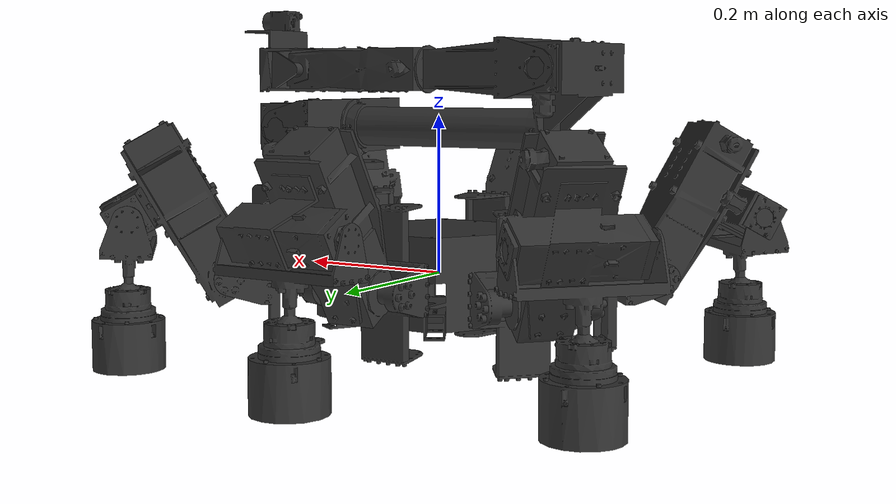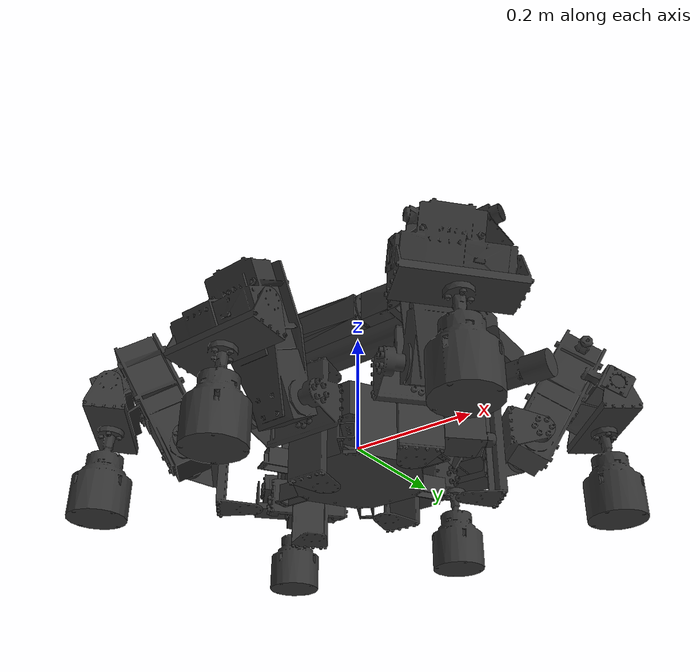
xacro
<?xml version="1.0" ?>
<robot name="hexapod_with_arm" xmlns:xacro="http://www.ros.org/wiki/xacro">

    <xacro:include filename="$(find hexapod_description)/urdf/hexapod.urdf.xacro"/>

    <xacro:include filename="$(find arm_description)/urdf/arm.urdf.xacro"/>

    <link name="base_link"/>

    <xacro:hexapod_base parent="base_link"/>

    <xacro:hexapod_arm parent="body_link" xyz="0.1809 0 -0.0489" rpy="0 0 ${3*pi/4.0}"/>

    <!--Include Gazebo components-->
    <xacro:include filename="$(find hexapod_description)/urdf/hexapod.gazebo.xacro"/>

    <xacro:include filename="$(find arm_description)/urdf/arm.gazebo.xacro"/>

    <gazebo>
        <plugin name="ros_control" filename="libgazebo_ros_control.so">
          <robotNamespace></robotNamespace>
        </plugin>
    </gazebo>

</robot>

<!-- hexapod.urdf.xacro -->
<robot xmlns:xacro="http://www.ros.org/wiki/xacro">

    <!-- All meshes are scaled by 0.001 in all dimensions because I exported in mm, ROS uses m-->

    <xacro:macro name="hexapod_base" params="parent">

        <joint name="base_attachment" type="fixed">
            <parent link="${parent}"/>
            <child link="body_link"/>
        </joint>

        <link name="body_link">
            <inertial>
                <origin xyz="0.0 0.0 0.0" rpy="0.0 0.0 0.0"/>
                <mass value="1"/>
                <inertia ixx="0.001" ixy="0.0" ixz="0.0" iyy="0.001" iyz="0.0" izz="0.001"/>
            </inertial>

            <visual>
                <origin xyz="0 0 0.0" rpy="0.0 0.0 0.0"/>
                <geometry>
                    <mesh filename="package://hexapod_description/meshes/visual/body.stl" scale="0.001 0.001 0.001"/>
                </geometry>
                <material name="Grey">
                    <color rgba="0.2 0.2 0.2 1"/>
                </material>
            </visual>

            <collision>
                <origin xyz="0.0 0.0 0.0" rpy="0.0 0.0 0.0"/>
                <geometry>
                    <mesh filename="package://hexapod_description/meshes/collision/body.stl" scale="0.001 0.001 0.001"/>
                </geometry>
            </collision>
        </link>

        <xacro:hexapod_leg xyz="0.1497 0.0797 0.0" rpy="0.0 0.0 0.738" suffix="lf"/>

        <xacro:hexapod_leg xyz="0.0 0.0795 0.0" rpy="0.0 0.0 ${pi/2.0}" suffix="lm"/>

        <xacro:hexapod_leg xyz="-0.1497 0.0797 0.0" rpy="0.0 0.0 2.404" suffix="lr"/>

        <xacro:hexapod_leg xyz="0.1497 -0.0797 0.0" rpy="0.0 0.0 -0.738" suffix="rf"/>

        <xacro:hexapod_leg xyz="0.0 -0.0795 0.0" rpy="0.0 0.0 -${pi/2.0}" suffix="rm"/>

        <xacro:hexapod_leg xyz="-0.1497 -0.0797 0.0" rpy="0.0 0.0 -2.404" suffix="rr"/>

        <joint name="camera_attachment" type="fixed">
            <parent link="body_link"/>
            <child link="front_camera_link"/>
            <origin xyz="0.33 0.0 0.04" rpy="0.0 0.0 0.0"/>
        </joint>

        <link name="front_camera_link">
            <inertial>
                <origin xyz="0.0 0.0 0.0" rpy="0.0 0.0 0.0"/>
                <mass value="1"/>
                <inertia ixx="0.001" ixy="0.0" ixz="0.0" iyy="0.001" iyz="0.0" izz="0.001"/>
            </inertial>

            <visual>
                <origin xyz="0 0 0.0" rpy="0.0 0.0 0.0"/>
                <geometry>
                    <mesh filename="package://hexapod_description/meshes/visual/camera.stl" scale="0.001 0.001 0.001"/>
                </geometry>
                <material name="Grey">
                    <color rgba="0.2 0.2 0.2 1"/>
                </material>
            </visual>

            <collision>
                <origin xyz="0.0 0.0 0.0" rpy="0.0 0.0 0.0"/>
                <geometry>
                    <mesh filename="package://hexapod_description/meshes/collision/camera.stl" scale="0.001 0.001 0.001"/>
                </geometry>
            </collision>
        </link>

        <joint name="lidar_attachment" type="fixed">
            <parent link="body_link"/>
            <child link="lidar_link"/>
            <origin xyz="0.275 0.0 0.079" rpy="0.0 0.0 0.0"/>
        </joint>

        <link name="lidar_link">
            <inertial>
                <origin xyz="0.0 0.0 0.0" rpy="0.0 0.0 0.0"/>
                <mass value="1"/>
                <inertia ixx="0.001" ixy="0.0" ixz="0.0" iyy="0.001" iyz="0.0" izz="0.001"/>
            </inertial>

            <visual>
                <origin xyz="0.0 0.0 0.0" rpy="0.0 0.0 0.0"/>
                <geometry>
                    <mesh filename="package://hexapod_description/meshes/visual/lidar.stl" scale="0.001 0.001 0.001"/>
                </geometry>
                <material name="Grey">
                    <color rgba="0.2 0.2 0.2 1"/>
                </material>
            </visual>

            <collision>
                <origin xyz="0.0 0.0 0.0" rpy="0.0 0.0 0.0"/>
                <geometry>
                    <mesh filename="package://hexapod_description/meshes/collision/lidar.stl" scale="0.001 0.001 0.001"/>
                </geometry>
            </collision>
        </link>

    </xacro:macro>

    <xacro:macro name="hexapod_leg" params="xyz rpy suffix">

        <joint name="coxa_joint_${suffix}" type="revolute">
            <parent link="body_link"/>
            <child link="coxa_link_${suffix}"/>
            <origin xyz="${xyz}" rpy="${rpy}"/>
            <axis xyz="0 0 1"/>
            <limit effort="87" velocity="5.6548668" lower="-2.6179939" upper="2.6179939" />
            <dynamics damping="1.0"/>
        </joint>

        <link name="coxa_link_${suffix}">
            <inertial>
                <origin xyz="0.0 0.0 0.0" rpy="0.0 0.0 0.0"/>
                <mass value="1"/>
                <inertia ixx="0.001" ixy="0.0" ixz="0.0" iyy="0.001" iyz="0.0" izz="0.001"/>
            </inertial>

            <visual>
                <origin xyz="0 0 0.0" rpy="0.0 0.0 0.0"/>
                <geometry>
                    <mesh filename="package://hexapod_description/meshes/visual/leg_link_1.stl" scale="0.001 0.001 0.001"/>
                </geometry>
                <material name="Grey">
                    <color rgba="0.2 0.2 0.2 1"/>
                </material>
            </visual>

            <collision>
                <origin xyz="0.0 0.0 0.0" rpy="0.0 0.0 0.0"/>
                <geometry>
                    <mesh filename="package://hexapod_description/meshes/collision/leg_link_1.stl" scale="0.001 0.001 0.001"/>
                </geometry>
            </collision>
        </link>

        <joint name="thigh_joint_${suffix}" type="revolute">
            <parent link="coxa_link_${suffix}"/>
            <child link="thigh_link_${suffix}"/>
            <origin xyz="0.1 0.0 0.0" rpy="0.0 0.0 0.0"/>
            <axis xyz="0 1 0"/>
            <limit effort="87" velocity="5.6548668" lower="-2.6179939" upper="2.6179939" />
            <dynamics damping="1.0"/>
        </joint>

        <link name="thigh_link_${suffix}">
            <inertial>
                <origin xyz="0.0 0.0 0.0" rpy="0.0 0.0 0.0"/>
                <mass value="1"/>
                <inertia ixx="0.001" ixy="0.0" ixz="0.0" iyy="0.001" iyz="0.0" izz="0.001"/>
            </inertial>

            <visual>
                <origin xyz="0 0 0.0" rpy="0.0 0.0 0.0"/>
                <geometry>
                    <mesh filename="package://hexapod_description/meshes/visual/leg_link_2.stl" scale="0.001 0.001 0.001"/>
                </geometry>
                <material name="Grey">
                    <color rgba="0.2 0.2 0.2 1"/>
                </material>
            </visual>

            <collision>
                <origin xyz="0.0 0.0 0.0" rpy="0.0 0.0 0.0"/>
                <geometry>
                    <mesh filename="package://hexapod_description/meshes/collision/leg_link_2.stl" scale="0.001 0.001 0.001"/>
                </geometry>
            </collision>
        </link>

        <joint name="tibia_joint_${suffix}" type="revolute">
            <parent link="thigh_link_${suffix}"/>
            <child link="tibia_link_${suffix}"/>
            <origin xyz="0.1199 0.0 0.07597" rpy="0.0 0.0 0.0"/>
            <axis xyz="0 1 0"/>
            <limit effort="87" velocity="5.6548668" lower="-2.6179939" upper="2.6179939" />
            <dynamics damping="1.0"/>
        </joint>

        <link name="tibia_link_${suffix}">
            <inertial>
                <origin xyz="0.0 0.0 0.0" rpy="0.0 0.0 0.0"/>
                <mass value="1"/>
                <inertia ixx="0.001" ixy="0.0" ixz="0.0" iyy="0.001" iyz="0.0" izz="0.001"/>
            </inertial>

            <visual>
                <origin xyz="0 0 0.0" rpy="0.0 0.0 0.0"/>
                <geometry>
                    <mesh filename="package://hexapod_description/meshes/visual/leg_link_3.stl" scale="0.001 0.001 0.001"/>
                </geometry>
                <material name="Grey">
                    <color rgba="0.2 0.2 0.2 1"/>
                </material>
            </visual>

            <collision>
                <origin xyz="0.0 0.0 0.0" rpy="0.0 0.0 0.0"/>
                <geometry>
                    <mesh filename="package://hexapod_description/meshes/collision/leg_link_3.stl" scale="0.001 0.001 0.001"/>
                </geometry>
            </collision>
        </link>

        <xacro:include filename="$(find hexapod_description)/urdf/hexapod.transmission.xacro"/>
        <xacro:leg_joint_transmission suffix="${suffix}"/>

    </xacro:macro>

</robot>

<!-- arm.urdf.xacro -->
<robot xmlns:xacro="http://www.ros.org/wiki/xacro">

    <!-- All meshes are scaled by 0.001 in all dimensions because I exported in mm, ROS uses m-->

    <xacro:macro name="hexapod_arm" params="parent xyz rpy">

        <joint name="arm_attachment" type="fixed">
            <parent link="${parent}"/>
            <child link="arm_link_1"/>
            <origin xyz="${xyz}" rpy="${rpy}"/>
        </joint>

        <link name="arm_link_1">
            <inertial>
                <origin xyz="0.0 0.0 0.0" rpy="0.0 0.0 0.0"/>
                <mass value="0.1"/>
                <inertia ixx="0.001" ixy="0.0" ixz="0.0" iyy="0.001" iyz="0.0" izz="0.001"/>
            </inertial>

            <visual>
                <origin xyz="0 0 0.0" rpy="0.0 0.0 0.0"/>
                <geometry>
                    <mesh filename="package://arm_description/meshes/visual/arm_link_1.stl" scale="0.001 0.001 0.001"/>
                </geometry>
                <material name="Grey">
                    <color rgba="0.2 0.2 0.2 1"/>
                </material>
            </visual>

            <collision>
                <origin xyz="0.0 0.0 0.0" rpy="0.0 0.0 0.0"/>
                <geometry>
                    <mesh filename="package://arm_description/meshes/collision/arm_link_1.stl" scale="0.001 0.001 0.001"/>
                </geometry>
            </collision>
        </link>

        <joint name="arm_joint_1" type="revolute">
            <parent link="arm_link_1"/>
            <child link="arm_link_2"/>
            <origin xyz="0.0 0.0 0.194" rpy="0.0 0.0 ${5*pi/4.0}"/>
            <axis xyz="0 0 1"/>
            <dynamics damping="0"/>
            <dynamics friction="0"/>
            <limit effort="87" velocity="5.6548668" lower="-2.6179939" upper="2.6179939" />
        </joint>

        <link name="arm_link_2">
            <inertial>
                <origin xyz="0.0 0.0 0.0" rpy="0.0 0.0 0.0"/>
                <mass value="0.1"/>
                <inertia ixx="0.001" ixy="0.0" ixz="0.0" iyy="0.001" iyz="0.0" izz="0.001"/>
            </inertial>

            <visual>
                <origin xyz="0.0 0.0 0.0" rpy="0.0 0.0 0.0"/>
                <geometry>
                    <mesh filename="package://arm_description/meshes/visual/arm_link_2.stl" scale="0.001 0.001 0.001"/>
                </geometry>
                <material name="Grey">
                    <color rgba="0.2 0.2 0.2 1"/>
                </material>
            </visual>

            <collision>
                <origin xyz="0.0 0.0 0.0" rpy="0.0 0.0 0.0"/>
                <geometry>
                    <mesh filename="package://arm_description/meshes/collision/arm_link_2.stl" scale="0.001 0.001 0.001"/>
                </geometry>
            </collision>
        </link>

        <joint name="arm_joint_2" type="revolute">
            <parent link="arm_link_2"/>
            <child link="arm_link_3"/>
            <origin xyz="0.0 0.0 0.04" rpy="0.0 0.0 0.0"/>
            <axis xyz="0 1 0"/>
            <dynamics damping="0"/>
            <dynamics friction="0"/>
            <limit effort="87" velocity="5.6548668" lower="-2.6179939" upper="2.6179939" />
        </joint>

        <link name="arm_link_3">
            <inertial>
                <origin xyz="0.0 0.0 0.0" rpy="0.0 0.0 0.0"/>
                <mass value="0.1"/>
                <inertia ixx="0.001" ixy="0.0" ixz="0.0" iyy="0.001" iyz="0.0" izz="0.001"/>
            </inertial>

            <visual>
                <origin xyz="0.0 0.0 0.0" rpy="0.0 0.0 ${pi/2.0}"/>
                <geometry>
                    <mesh filename="package://arm_description/meshes/visual/arm_link_3.stl" scale="0.001 0.001 0.001"/>
                </geometry>
                <material name="Grey">
                    <color rgba="0.2 0.2 0.2 1"/>
                </material>
            </visual>

            <collision>
                <origin xyz="0.0 0.0 0.0" rpy="0.0 0.0 ${pi/2}"/>
                <geometry>
                    <mesh filename="package://arm_description/meshes/collision/arm_link_3.stl" scale="0.001 0.001 0.001"/>
                </geometry>
            </collision>
        </link>

        <joint name="arm_joint_3" type="revolute">
            <parent link="arm_link_3"/>
            <child link="arm_link_4"/>
            <origin xyz="-0.3683 0.014 0.073" rpy="0.0 ${pi} 0.0"/>
            <axis xyz="0 1 0"/>
            <dynamics damping="0"/>
            <dynamics friction="0"/>
            <limit effort="87" velocity="5.6548668" lower="-2.6179939" upper="2.6179939" />
        </joint>

        <link name="arm_link_4">
            <inertial>
                <origin xyz="0.0 0.0 0.0" rpy="0.0 0.0 0.0"/>
                <mass value="0.1"/>
                <inertia ixx="0.001" ixy="0.0" ixz="0.0" iyy="0.001" iyz="0.0" izz="0.001"/>
            </inertial>

            <visual>
                <origin xyz="0.0 0.0 0.0" rpy="0.0 0.0 ${pi/2.0}"/>
                <geometry>
                    <mesh filename="package://arm_description/meshes/visual/arm_link_4.stl" scale="0.001 0.001 0.001"/>
                </geometry>
                <material name="Grey">
                    <color rgba="0.2 0.2 0.2 1"/>
                </material>
            </visual>

            <collision>
                <origin xyz="0.0 0.0 0.0" rpy="0.0 0.0 ${pi/2}"/>
                <geometry>
                    <mesh filename="package://arm_description/meshes/collision/arm_link_4.stl" scale="0.001 0.001 0.001"/>
                </geometry>
            </collision>
        </link>

        <joint name="arm_joint_4" type="revolute">
            <parent link="arm_link_4"/>
            <child link="arm_link_5"/>
            <origin xyz="-0.202 0.0 0.0" rpy="0.0 ${pi} 0.0"/>
            <axis xyz="1 0 0"/>
            <dynamics damping="0"/>
            <dynamics friction="0"/>
            <limit effort="87" velocity="5.6548668" lower="-2.6179939" upper="2.6179939" />
        </joint>

        <link name="arm_link_5">
            <inertial>
                <origin xyz="0.0 0.0 0.0" rpy="0.0 0.0 0.0"/>
                <mass value="0.1"/>
                <inertia ixx="0.001" ixy="0.0" ixz="0.0" iyy="0.001" iyz="0.0" izz="0.001"/>
            </inertial>

            <visual>
                <origin xyz="0.0 0.0 0.0" rpy="0.0 0.0 0.0"/>
                <geometry>
                    <mesh filename="package://arm_description/meshes/visual/arm_link_5.stl" scale="0.001 0.001 0.001"/>
                </geometry>
                <material name="Grey">
                    <color rgba="0.2 0.2 0.2 1"/>
                </material>
            </visual>

            <collision>
                <origin xyz="0.0 0.0 0.0" rpy="0.0 0.0 0.0"/>
                <geometry>
                    <mesh filename="package://arm_description/meshes/collision/arm_link_5.stl" scale="0.001 0.001 0.001"/>
                </geometry>
            </collision>
        </link>

        <joint name="arm_joint_5" type="revolute">
            <parent link="arm_link_5"/>
            <child link="arm_link_6"/>
            <origin xyz="0.17875 0.0 0.0" rpy="0.0 0.0 0.0"/>
            <axis xyz="0 1 0"/>
            <dynamics damping="0"/>
            <dynamics friction="0"/>
            <limit effort="87" velocity="5.6548668" lower="-2.6179939" upper="2.6179939" />
        </joint>

        <link name="arm_link_6">
            <inertial>
                <origin xyz="0.0 0.0 0.0" rpy="0.0 0.0 0.0"/>
                <mass value="0.1"/>
                <inertia ixx="0.001" ixy="0.0" ixz="0.0" iyy="0.001" iyz="0.0" izz="0.001"/>
            </inertial>

            <visual>
                <origin xyz="0.0 0.0 0.0" rpy="0.0 0.0 0.0"/>
                <geometry>
                    <mesh filename="package://arm_description/meshes/visual/arm_link_6.stl" scale="0.001 0.001 0.001"/>
                </geometry>
                <material name="Grey">
                    <color rgba="0.2 0.2 0.2 1"/>
                </material>
            </visual>

            <collision>
                <origin xyz="0.0 0.0 0.0" rpy="0.0 0.0 0.0"/>
                <geometry>
                    <mesh filename="package://arm_description/meshes/collision/arm_link_6.stl" scale="0.001 0.001 0.001"/>
                </geometry>
            </collision>
        </link>

        <joint name="arm_camera_attachment" type="fixed">
            <parent link="arm_link_6"/>
            <child link="arm_camera_link"/>
            <origin xyz="0.09 -0.025 0.065" rpy="0.0 0.0 0.0"/>
        </joint>

        <link name="arm_camera_link">
            <inertial>
                <origin xyz="0.0 0.0 0.0" rpy="0.0 0.0 0.0"/>
                <mass value="0.1"/>
                <inertia ixx="0.001" ixy="0.0" ixz="0.0" iyy="0.001" iyz="0.0" izz="0.001"/>
            </inertial>

            <visual>
                <origin xyz="0.0 0.0 0.0" rpy="0.0 0.0 0.0"/>
                <geometry>
                    <mesh filename="package://arm_description/meshes/visual/arm_camera.stl" scale="0.001 0.001 0.001"/>
                </geometry>
                <material name="Grey">
                    <color rgba="0.2 0.2 0.2 1"/>
                </material>
            </visual>

            <collision>
                <origin xyz="0.0 0.0 0.0" rpy="0.0 0.0 0.0"/>
                <geometry>
                    <mesh filename="package://arm_description/meshes/collision/arm_camera.stl" scale="0.001 0.001 0.001"/>
                </geometry>
            </collision>
        </link>

        <xacro:include filename="$(find arm_description)/urdf/arm.transmission.xacro"/>

    </xacro:macro>

</robot>
